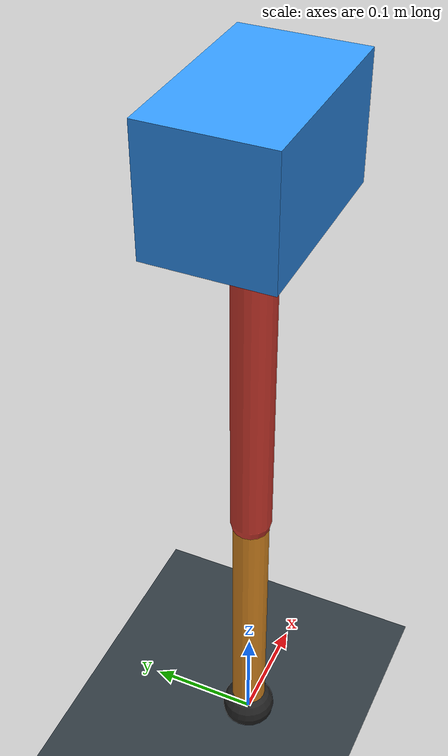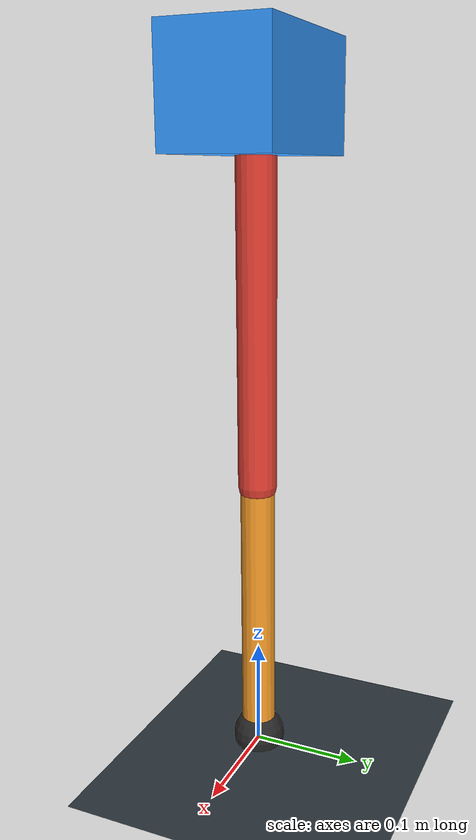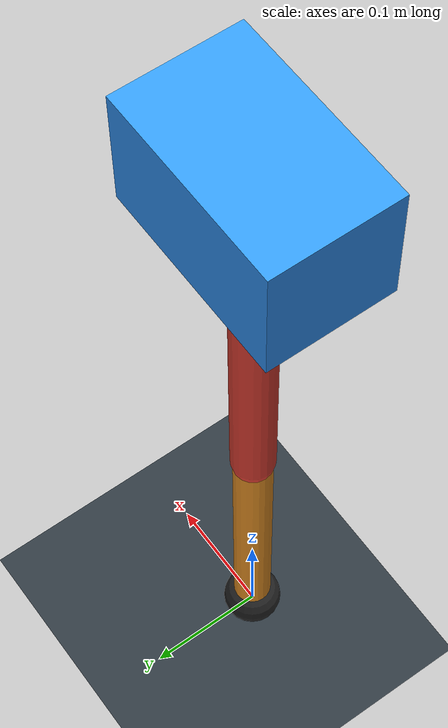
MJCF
<mujoco model="single_axis_two_bar">
  <compiler angle="radian" inertiafromgeom="true"/>
  <option timestep="0.001" integrator="implicitfast" gravity="0 0 -9.81"/>
  <default>
    <joint damping="0.08"/>
    <geom friction="1.2 0.01 0.0001" condim="3"/>
  </default>
  <worldbody>
    <geom name="floor" type="plane" size="5 5 0.1" rgba="0.18 0.22 0.25 1"/>
    <body name="carriage" pos="0 0 0.6073775043505998">
      <joint name="pole_slide" type="slide" axis="0 0 1"/>
      <geom name="payload" type="box" size="0.08 0.05 0.05" mass="2.4563796799717554" rgba="0.2 0.6 1 1"/>
      <body name="thigh" pos="0 0 0">
        <joint name="hip" type="hinge" axis="0 1 0"/>
        <geom name="thigh_link" type="capsule" fromto="0 0 0 0 0 -0.342859305869526" size="0.018" mass="0.24429178591804698" rgba="0.9 0.25 0.2 1"/>
        <body name="shank" pos="0 0 -0.342859305869526">
          <joint name="knee" type="hinge" axis="0 1 0"/>
          <geom name="shank_link" type="capsule" fromto="0 0 0 0 0 -0.25752987387336046" size="0.016" mass="0.1834934380918152" rgba="0.95 0.6 0.15 1"/>
          <geom name="foot" type="sphere" pos="0 0 -0.25752987387336046" size="0.025" mass="0.03" rgba="0.15 0.15 0.15 1"/>
          <site name="toe" pos="0 0 -0.25752987387336046" size="0.008"/>
        </body>
      </body>
    </body>
  </worldbody>
  <actuator>
    <motor name="hip_motor" joint="hip" ctrlrange="-31.81587902207415 31.81587902207415"/>
    <motor name="knee_motor" joint="knee" ctrlrange="-104.61784250414014 104.61784250414014"/>
  </actuator>
</mujoco>
